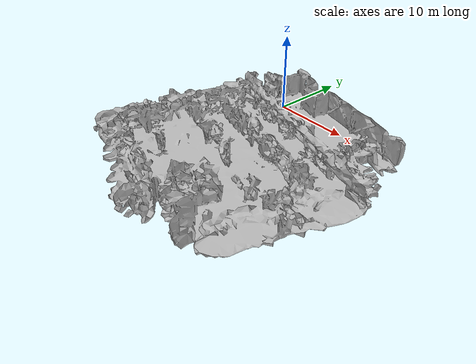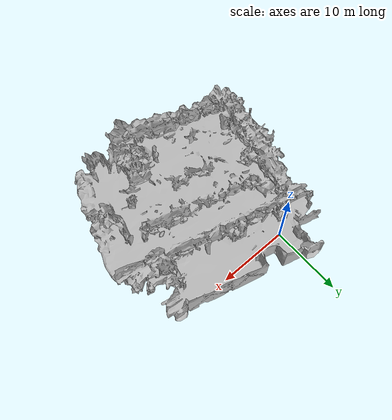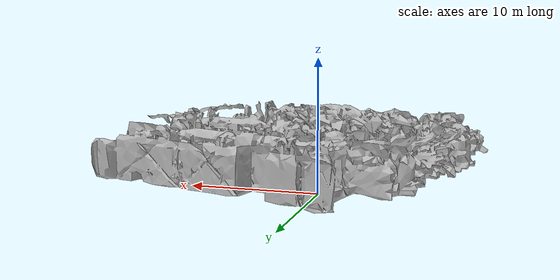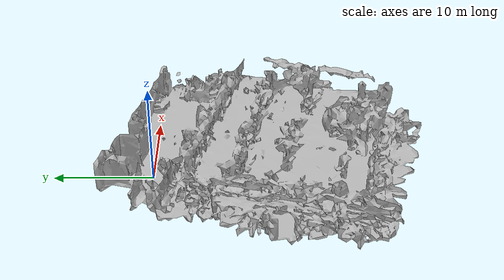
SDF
<?xml version="1.0" ?>
<sdf version="1.6">
  <model name="zone-A">
    <static>true</static>
    <link name="zone-A_link">
      <visual name="visual">
        <geometry>
          <mesh>
            <uri>model://zone-A/meshes/zone-A_visual.obj</uri>
            <!-- Or use zone-A.stl -->
          </mesh>
        </geometry>
      </visual>

      <!-- Collision -->
      <collision name="collision">
        <geometry>
          <mesh>
            <uri>model://zone-A/meshes/zone-A_collision.obj</uri>
          </mesh>
        </geometry>
        <surface>
          <contact>
            <ode/>
          </contact>
          <bounce/>
          <friction>
            <ode/>
          </friction>
        </surface>
      </collision>

    </link>
  </model>
</sdf>
